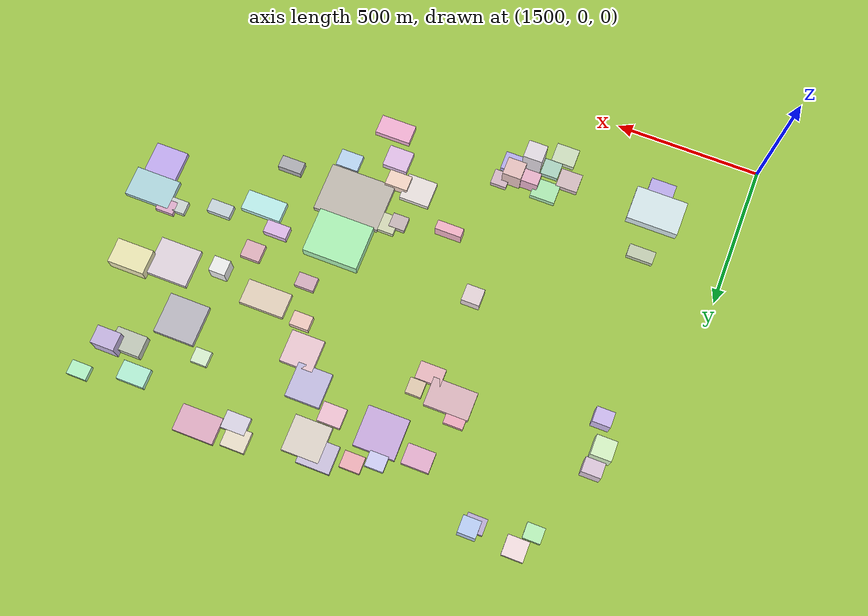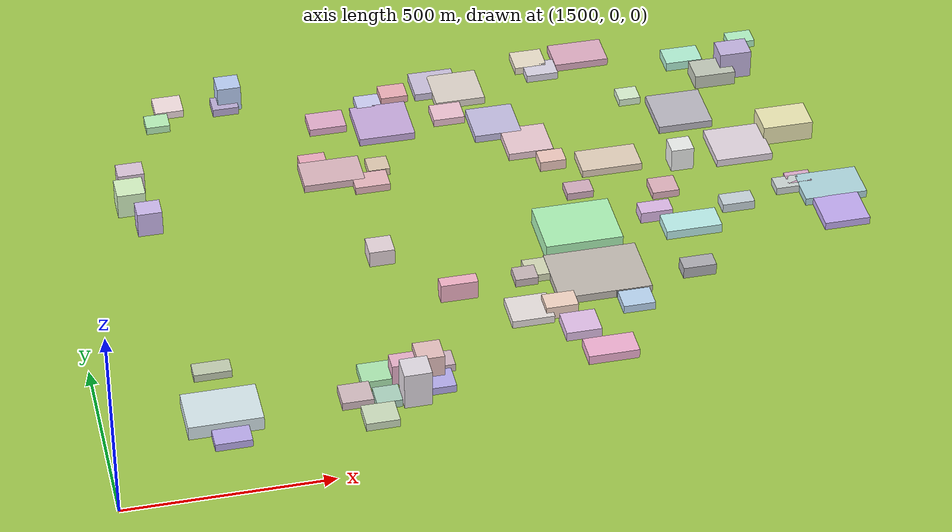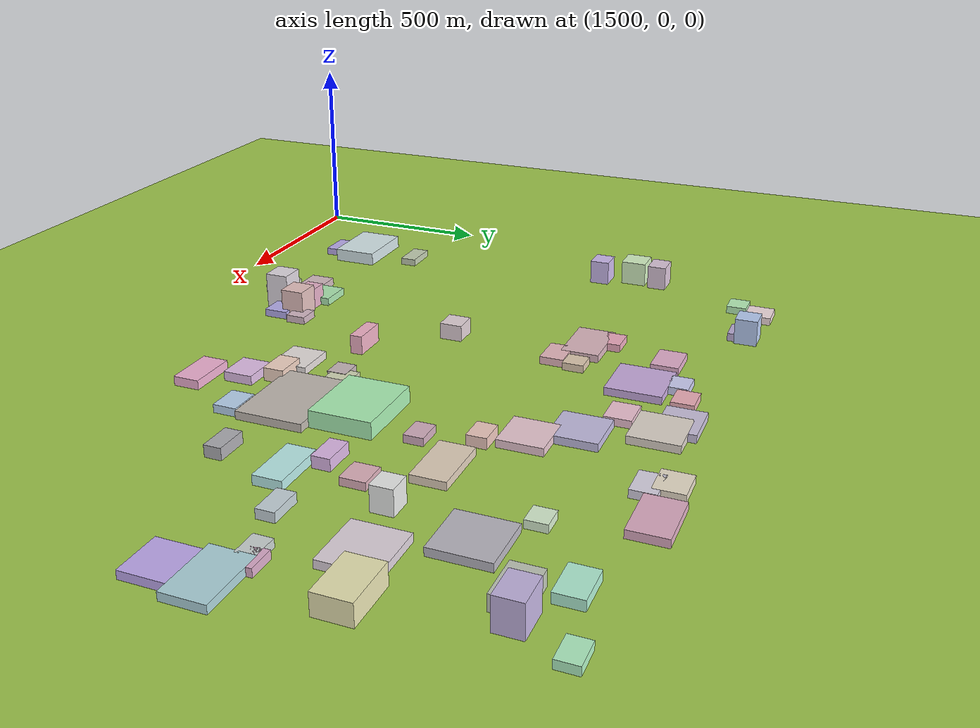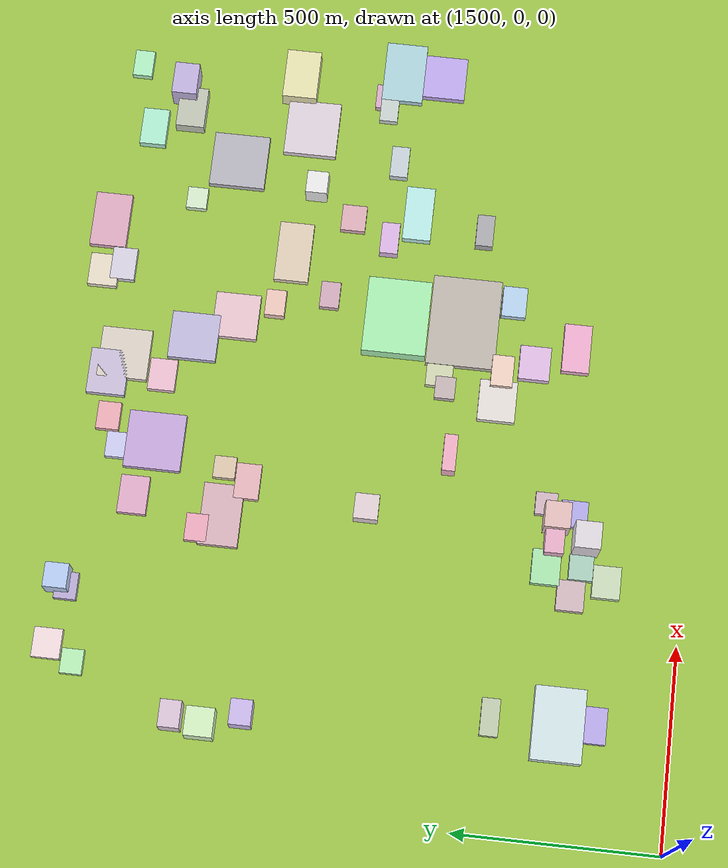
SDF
<sdf version="1.9">
 <world name="city_map">
  <model name="ground_plane">
   <static>1</static>
   <link name="link">
    <collision name="collision">
     <geometry><plane><normal>0 0 1</normal><size>11000 11000</size></plane></geometry>
    </collision>
    <visual name="visual">
     <geometry><plane><normal>0 0 1</normal><size>11000 11000</size></plane></geometry>
     <material>
      <ambient>0.551 0.712 0.210 1</ambient>
      <diffuse>0.651 0.812 0.310 1</diffuse>
      <specular>0.1 0.1 0.05 1</specular>
     </material>
    </visual>
   </link>
  </model>
  <model name="building_95256333">
   <static>1</static>
   <pose>2753.8077095743784 586.4312912188058 10.5 0 0 0</pose>
   <link name="link">
    <collision name="collision">
     <geometry><box><size>230.553463907557 171.98340000020096 21.0</size></box></geometry>
    </collision>
    <visual name="visual">
     <cast_shadows>false</cast_shadows>
     <geometry><box><size>230.553463907557 171.98340000020096 21.0</size></box></geometry>
     <material>
      <ambient>0.686 0.656 0.622 1</ambient>
      <diffuse>0.786 0.756 0.722 1</diffuse>
      <specular>0.236 0.227 0.217 1</specular>
      <emissive>0.01 0.01 0.01 1</emissive>
     </material>
    </visual>
   </link>
  </model>
  <model name="building_645757484">
   <static>1</static>
   <pose>2744.1018351129865 753.98529146079 21.665343699572546 0 0 0</pose>
   <link name="link">
    <collision name="collision">
     <geometry><box><size>193.3620000000147 158.25988112347488 43.33068739914509</size></box></geometry>
    </collision>
    <visual name="visual">
     <cast_shadows>false</cast_shadows>
     <geometry><box><size>193.3620000000147 158.25988112347488 43.33068739914509</size></box></geometry>
     <material>
      <ambient>0.600 0.883 0.637 1</ambient>
      <diffuse>0.700 0.983 0.737 1</diffuse>
      <specular>0.210 0.295 0.221 1</specular>
      <emissive>0.01 0.01 0.01 1</emissive>
     </material>
    </visual>
   </link>
  </model>
  <model name="building_177197993">
   <static>1</static>
   <pose>1779.1059165361296 267.86406099322573 18.0 0 0 0</pose>
   <link name="link">
    <collision name="collision">
     <geometry><box><size>177.7338826786568 122.35529999993844 36.0</size></box></geometry>
    </collision>
    <visual name="visual">
     <cast_shadows>false</cast_shadows>
     <geometry><box><size>177.7338826786568 122.35529999993844 36.0</size></box></geometry>
     <material>
      <ambient>0.772 0.841 0.857 1</ambient>
      <diffuse>0.872 0.941 0.957 1</diffuse>
      <specular>0.262 0.282 0.287 1</specular>
      <emissive>0.01 0.01 0.01 1</emissive>
     </material>
    </visual>
   </link>
  </model>
  <model name="building_663329203">
   <static>1</static>
   <pose>2367.1414692491867 1310.8313619500423 10.0 0 0 0</pose>
   <link name="link">
    <collision name="collision">
     <geometry><box><size>143.24482081875132 140.60370000024136 20</size></box></geometry>
    </collision>
    <visual name="visual">
     <cast_shadows>false</cast_shadows>
     <geometry><box><size>143.24482081875132 140.60370000024136 20</size></box></geometry>
     <material>
      <ambient>0.717 0.600 0.807 1</ambient>
      <diffuse>0.817 0.700 0.907 1</diffuse>
      <specular>0.245 0.210 0.272 1</specular>
      <emissive>0.01 0.01 0.01 1</emissive>
     </material>
    </visual>
   </link>
  </model>
  <model name="building_230204631">
   <static>1</static>
   <pose>3121.9798988473017 1195.359845361157 10.0 0 0 0</pose>
   <link name="link">
    <collision name="collision">
     <geometry><box><size>140.40389999948388 140.12168081745273 20</size></box></geometry>
    </collision>
    <visual name="visual">
     <cast_shadows>false</cast_shadows>
     <geometry><box><size>140.40389999948388 140.12168081745273 20</size></box></geometry>
     <material>
      <ambient>0.657 0.647 0.686 1</ambient>
      <diffuse>0.757 0.747 0.786 1</diffuse>
      <specular>0.227 0.224 0.236 1</specular>
      <emissive>0.01 0.01 0.01 1</emissive>
     </material>
    </visual>
   </link>
  </model>
  <model name="building_874791513">
   <static>1</static>
   <pose>3230.2686142714574 1021.5660588205621 10.0 0 0 0</pose>
   <link name="link">
    <collision name="collision">
     <geometry><box><size>145.04370000007327 132.77960865367987 20</size></box></geometry>
    </collision>
    <visual name="visual">
     <cast_shadows>false</cast_shadows>
     <geometry><box><size>145.04370000007327 132.77960865367987 20</size></box></geometry>
     <material>
      <ambient>0.814 0.767 0.806 1</ambient>
      <diffuse>0.914 0.867 0.906 1</diffuse>
      <specular>0.274 0.260 0.272 1</specular>
      <emissive>0.01 0.01 0.01 1</emissive>
     </material>
    </visual>
   </link>
  </model>
  <model name="building_483628706">
   <static>1</static>
   <pose>3409.0739560210736 803.3793015555366 10.0 0 0 0</pose>
   <link name="link">
    <collision name="collision">
     <geometry><box><size>157.8669227414518 103.84049999967715 20</size></box></geometry>
    </collision>
    <visual name="visual">
     <cast_shadows>false</cast_shadows>
     <geometry><box><size>157.8669227414518 103.84049999967715 20</size></box></geometry>
     <material>
      <ambient>0.616 0.774 0.804 1</ambient>
      <diffuse>0.716 0.874 0.904 1</diffuse>
      <specular>0.215 0.262 0.271 1</specular>
      <emissive>0.01 0.01 0.01 1</emissive>
     </material>
    </visual>
   </link>
  </model>
  <model name="building_94150322">
   <static>1</static>
   <pose>2582.0430458885517 1415.5044150231383 10.0 0 0 0</pose>
   <link name="link">
    <collision name="collision">
     <geometry><box><size>128.20425603814508 124.37549999988562 20</size></box></geometry>
    </collision>
    <visual name="visual">
     <cast_shadows>false</cast_shadows>
     <geometry><box><size>128.20425603814508 124.37549999988562 20</size></box></geometry>
     <material>
      <ambient>0.804 0.766 0.724 1</ambient>
      <diffuse>0.904 0.866 0.824 1</diffuse>
      <specular>0.271 0.260 0.247 1</specular>
      <emissive>0.01 0.01 0.01 1</emissive>
     </material>
    </visual>
   </link>
  </model>
  <model name="building_223767415">
   <static>1</static>
   <pose>2199.4583034955403 1126.7955682710437 10.0 0 0 0</pose>
   <link name="link">
    <collision name="collision">
     <geometry><box><size>153.7570892362903 98.19059999990287 20</size></box></geometry>
    </collision>
    <visual name="visual">
     <cast_shadows>false</cast_shadows>
     <geometry><box><size>153.7570892362903 98.19059999990287 20</size></box></geometry>
     <material>
      <ambient>0.793 0.642 0.678 1</ambient>
      <diffuse>0.893 0.742 0.778 1</diffuse>
      <specular>0.268 0.223 0.233 1</specular>
      <emissive>0.01 0.01 0.01 1</emissive>
     </material>
    </visual>
   </link>
  </model>
  <model name="building_312070599">
   <static>1</static>
   <pose>2644.98611607642 1250.060256290193 10.0 0 0 0</pose>
   <link name="link">
    <collision name="collision">
     <geometry><box><size>119.97093294125634 119.75790000034436 20</size></box></geometry>
    </collision>
    <visual name="visual">
     <cast_shadows>false</cast_shadows>
     <geometry><box><size>119.97093294125634 119.75790000034436 20</size></box></geometry>
     <material>
      <ambient>0.697 0.672 0.819 1</ambient>
      <diffuse>0.797 0.772 0.919 1</diffuse>
      <specular>0.239 0.232 0.276 1</specular>
      <emissive>0.01 0.01 0.01 1</emissive>
     </material>
    </visual>
   </link>
  </model>
  <model name="building_378848551">
   <static>1</static>
   <pose>2892.4897028180044 1028.8604716308953 10.0 0 0 0</pose>
   <link name="link">
    <collision name="collision">
     <geometry><box><size>154.1318800557488 85.86960000025101 20</size></box></geometry>
    </collision>
    <visual name="visual">
     <cast_shadows>false</cast_shadows>
     <geometry><box><size>154.1318800557488 85.86960000025101 20</size></box></geometry>
     <material>
      <ambient>0.824 0.751 0.667 1</ambient>
      <diffuse>0.924 0.851 0.767 1</diffuse>
      <specular>0.277 0.255 0.230 1</specular>
      <emissive>0.01 0.01 0.01 1</emissive>
     </material>
    </visual>
   </link>
  </model>
  <model name="building_741108798">
   <static>1</static>
   <pose>2709.4112736897787 1152.1538031455327 10.0 0 0 0</pose>
   <link name="link">
    <collision name="collision">
     <geometry><box><size>115.3512000001129 111.87009469455022 20</size></box></geometry>
    </collision>
    <visual name="visual">
     <cast_shadows>false</cast_shadows>
     <geometry><box><size>115.3512000001129 111.87009469455022 20</size></box></geometry>
     <material>
      <ambient>0.855 0.719 0.757 1</ambient>
      <diffuse>0.955 0.819 0.857 1</diffuse>
      <specular>0.287 0.246 0.257 1</specular>
      <emissive>0.01 0.01 0.01 1</emissive>
     </material>
    </visual>
   </link>
  </model>
  <model name="building_388039942">
   <static>1</static>
   <pose>2927.9816172997657 1497.7060518722924 10.0 0 0 0</pose>
   <link name="link">
    <collision name="collision">
     <geometry><box><size>140.35602338656403 91.61939999961533 20</size></box></geometry>
    </collision>
    <visual name="visual">
     <cast_shadows>false</cast_shadows>
     <geometry><box><size>140.35602338656403 91.61939999961533 20</size></box></geometry>
     <material>
      <ambient>0.808 0.607 0.695 1</ambient>
      <diffuse>0.908 0.707 0.795 1</diffuse>
      <specular>0.273 0.212 0.239 1</specular>
      <emissive>0.01 0.01 0.01 1</emissive>
     </material>
    </visual>
   </link>
  </model>
  <model name="building_83230302">
   <static>1</static>
   <pose>3406.1211339879187 698.8964376367471 10.0 0 0 0</pose>
   <link name="link">
    <collision name="collision">
     <geometry><box><size>114.48728035865634 107.93639999943139 20</size></box></geometry>
    </collision>
    <visual name="visual">
     <cast_shadows>false</cast_shadows>
     <geometry><box><size>114.48728035865634 107.93639999943139 20</size></box></geometry>
     <material>
      <ambient>0.691 0.601 0.881 1</ambient>
      <diffuse>0.791 0.701 0.981 1</diffuse>
      <specular>0.237 0.210 0.294 1</specular>
      <emissive>0.01 0.01 0.01 1</emissive>
     </material>
    </visual>
   </link>
  </model>
  <model name="building_726234550">
   <static>1</static>
   <pose>3362.216613622529 1063.2631855639902 25.74095827329397 0 0 0</pose>
   <link name="link">
    <collision name="collision">
     <geometry><box><size>128.2937999999305 86.86029503629436 51.48191654658794</size></box></geometry>
    </collision>
    <visual name="visual">
     <cast_shadows>false</cast_shadows>
     <geometry><box><size>128.2937999999305 86.86029503629436 51.48191654658794</size></box></geometry>
     <material>
      <ambient>0.857 0.837 0.634 1</ambient>
      <diffuse>0.957 0.937 0.734 1</diffuse>
      <specular>0.287 0.281 0.220 1</specular>
      <emissive>0.01 0.01 0.01 1</emissive>
     </material>
    </visual>
   </link>
  </model>
  <model name="building_703223975">
   <static>1</static>
   <pose>2530.165362268602 1450.0061210028964 10.0 0 0 0</pose>
   <link name="link">
    <collision name="collision">
     <geometry><box><size>115.16250000027384 95.82003589584069 20</size></box></geometry>
    </collision>
    <visual name="visual">
     <cast_shadows>false</cast_shadows>
     <geometry><box><size>115.16250000027384 95.82003589584069 20</size></box></geometry>
     <material>
      <ambient>0.730 0.691 0.804 1</ambient>
      <diffuse>0.830 0.791 0.904 1</diffuse>
      <specular>0.249 0.237 0.271 1</specular>
      <emissive>0.01 0.01 0.01 1</emissive>
     </material>
    </visual>
   </link>
  </model>
  <model name="building_562913991">
   <static>1</static>
   <pose>3027.089384989114 728.1002702895512 12.0 0 0 0</pose>
   <link name="link">
    <collision name="collision">
     <geometry><box><size>140.29053063265212 71.19539999991531 24.0</size></box></geometry>
    </collision>
    <visual name="visual">
     <cast_shadows>false</cast_shadows>
     <geometry><box><size>140.29053063265212 71.19539999991531 24.0</size></box></geometry>
     <material>
      <ambient>0.664 0.868 0.855 1</ambient>
      <diffuse>0.764 0.968 0.955 1</diffuse>
      <specular>0.229 0.290 0.286 1</specular>
      <emissive>0.01 0.01 0.01 1</emissive>
     </material>
    </visual>
   </link>
  </model>
  <model name="building_606217863">
   <static>1</static>
   <pose>2560.411301151715 485.2027689110193 10.0 0 0 0</pose>
   <link name="link">
    <collision name="collision">
     <geometry><box><size>103.94322247797035 92.58509999985876 20</size></box></geometry>
    </collision>
    <visual name="visual">
     <cast_shadows>false</cast_shadows>
     <geometry><box><size>103.94322247797035 92.58509999985876 20</size></box></geometry>
     <material>
      <ambient>0.845 0.815 0.805 1</ambient>
      <diffuse>0.945 0.915 0.905 1</diffuse>
      <specular>0.284 0.274 0.272 1</specular>
      <emissive>0.01 0.01 0.01 1</emissive>
     </material>
    </visual>
   </link>
  </model>
  <model name="building_942181483">
   <static>1</static>
   <pose>2715.4078624896547 301.5096646844577 12.0 0 0 0</pose>
   <link name="link">
    <collision name="collision">
     <geometry><box><size>123.39869999951247 68.07119622437642 24.0</size></box></geometry>
    </collision>
    <visual name="visual">
     <cast_shadows>false</cast_shadows>
     <geometry><box><size>123.39869999951247 68.07119622437642 24.0</size></box></geometry>
     <material>
      <ambient>0.883 0.624 0.762 1</ambient>
      <diffuse>0.983 0.724 0.862 1</diffuse>
      <specular>0.295 0.217 0.259 1</specular>
      <emissive>0.01 0.01 0.01 1</emissive>
     </material>
    </visual>
   </link>
  </model>
  <model name="building_519996404">
   <static>1</static>
   <pose>3247.277413805824 1332.1411666838185 18.822726591854703 0 0 0</pose>
   <link name="link">
    <collision name="collision">
     <geometry><box><size>106.21589999983172 72.09484841737927 37.64545318370941</size></box></geometry>
    </collision>
    <visual name="visual">
     <cast_shadows>false</cast_shadows>
     <geometry><box><size>106.21589999983172 72.09484841737927 37.64545318370941</size></box></geometry>
     <material>
      <ambient>0.688 0.715 0.652 1</ambient>
      <diffuse>0.788 0.815 0.752 1</diffuse>
      <specular>0.237 0.245 0.226 1</specular>
      <emissive>0.01 0.01 0.01 1</emissive>
     </material>
    </visual>
   </link>
  </model>
  <model name="building_382789279">
   <static>1</static>
   <pose>2226.5956652653813 1344.795890636461 10.0 0 0 0</pose>
   <link name="link">
    <collision name="collision">
     <geometry><box><size>94.73849999978512 70.52132684136338 20</size></box></geometry>
    </collision>
    <visual name="visual">
     <cast_shadows>false</cast_shadows>
     <geometry><box><size>94.73849999978512 70.52132684136338 20</size></box></geometry>
     <material>
      <ambient>0.829 0.613 0.737 1</ambient>
      <diffuse>0.929 0.713 0.837 1</diffuse>
      <specular>0.279 0.214 0.251 1</specular>
      <emissive>0.01 0.01 0.01 1</emissive>
     </material>
    </visual>
   </link>
  </model>
  <model name="building_283791389">
   <static>1</static>
   <pose>2666.2458306516405 401.9636166167788 12.0 0 0 0</pose>
   <link name="link">
    <collision name="collision">
     <geometry><box><size>86.48015280126909 76.46790000001147 24.0</size></box></geometry>
    </collision>
    <visual name="visual">
     <cast_shadows>false</cast_shadows>
     <geometry><box><size>86.48015280126909 76.46790000001147 24.0</size></box></geometry>
     <material>
      <ambient>0.820 0.681 0.848 1</ambient>
      <diffuse>0.920 0.781 0.948 1</diffuse>
      <specular>0.276 0.234 0.284 1</specular>
      <emissive>0.01 0.01 0.01 1</emissive>
     </material>
    </visual>
   </link>
  </model>
  <model name="building_855443043">
   <static>1</static>
   <pose>3189.5243543197266 1422.2603922578833 12.0 0 0 0</pose>
   <link name="link">
    <collision name="collision">
     <geometry><box><size>96.38130000005418 65.26678224518271 24.0</size></box></geometry>
    </collision>
    <visual name="visual">
     <cast_shadows>false</cast_shadows>
     <geometry><box><size>96.38130000005418 65.26678224518271 24.0</size></box></geometry>
     <material>
      <ambient>0.628 0.878 0.767 1</ambient>
      <diffuse>0.728 0.978 0.867 1</diffuse>
      <specular>0.218 0.293 0.260 1</specular>
      <emissive>0.01 0.01 0.01 1</emissive>
     </material>
    </visual>
   </link>
  </model>
  <model name="building_814755737">
   <static>1</static>
   <pose>2793.837646597317 1497.4898758544941 10.0 0 0 0</pose>
   <link name="link">
    <collision name="collision">
     <geometry><box><size>82.72698599618816 73.24889999946294 20</size></box></geometry>
    </collision>
    <visual name="visual">
     <cast_shadows>false</cast_shadows>
     <geometry><box><size>82.72698599618816 73.24889999946294 20</size></box></geometry>
     <material>
      <ambient>0.854 0.809 0.725 1</ambient>
      <diffuse>0.954 0.909 0.825 1</diffuse>
      <specular>0.286 0.273 0.248 1</specular>
      <emissive>0.01 0.01 0.01 1</emissive>
     </material>
    </visual>
   </link>
  </model>
  <model name="building_7835866">
   <static>1</static>
   <pose>2157.334719397973 329.64338309553955 10.5 0 0 0</pose>
   <link name="link">
    <collision name="collision">
     <geometry><box><size>86.5911000000068 69.67818429980898 21.0</size></box></geometry>
    </collision>
    <visual name="visual">
     <cast_shadows>false</cast_shadows>
     <geometry><box><size>86.5911000000068 69.67818429980898 21.0</size></box></geometry>
     <material>
      <ambient>0.610 0.851 0.629 1</ambient>
      <diffuse>0.710 0.951 0.729 1</diffuse>
      <specular>0.213 0.285 0.219 1</specular>
      <emissive>0.01 0.01 0.01 1</emissive>
     </material>
    </visual>
   </link>
  </model>
  <model name="building_592050567">
   <static>1</static>
   <pose>2135.170023619476 181.21437195210166 10.5 0 0 0</pose>
   <link name="link">
    <collision name="collision">
     <geometry><box><size>80.31960000006677 68.11334257466412 21.0</size></box></geometry>
    </collision>
    <visual name="visual">
     <cast_shadows>false</cast_shadows>
     <geometry><box><size>80.31960000006677 68.11334257466412 21.0</size></box></geometry>
     <material>
      <ambient>0.737 0.806 0.677 1</ambient>
      <diffuse>0.837 0.906 0.777 1</diffuse>
      <specular>0.251 0.272 0.233 1</specular>
      <emissive>0.01 0.01 0.01 1</emissive>
     </material>
    </visual>
   </link>
  </model>
  <model name="building_807607108">
   <static>1</static>
   <pose>2289.9447286759623 1072.118131772621 10.0 0 0 0</pose>
   <link name="link">
    <collision name="collision">
     <geometry><box><size>88.31160000039517 61.15236450159986 20</size></box></geometry>
    </collision>
    <visual name="visual">
     <cast_shadows>false</cast_shadows>
     <geometry><box><size>88.31160000039517 61.15236450159986 20</size></box></geometry>
     <material>
      <ambient>0.847 0.651 0.680 1</ambient>
      <diffuse>0.947 0.751 0.780 1</diffuse>
      <specular>0.284 0.225 0.234 1</specular>
      <emissive>0.01 0.01 0.01 1</emissive>
     </material>
    </visual>
   </link>
  </model>
  <model name="building_995497698">
   <static>1</static>
   <pose>2537.240574151237 1314.600569886296 10.0 0 0 0</pose>
   <link name="link">
    <collision name="collision">
     <geometry><box><size>80.35289999966722 67.17239883022515 20</size></box></geometry>
    </collision>
    <visual name="visual">
     <cast_shadows>false</cast_shadows>
     <geometry><box><size>80.35289999966722 67.17239883022515 20</size></box></geometry>
     <material>
      <ambient>0.875 0.695 0.763 1</ambient>
      <diffuse>0.975 0.795 0.863 1</diffuse>
      <specular>0.293 0.238 0.259 1</specular>
      <emissive>0.01 0.01 0.01 1</emissive>
     </material>
    </visual>
   </link>
  </model>
  <model name="building_944666044">
   <static>1</static>
   <pose>3308.3085810462876 1353.8059300080483 37.80803912492419 0 0 0</pose>
   <link name="link">
    <collision name="collision">
     <geometry><box><size>82.57290000037187 62.66816197888174 75.61607824984839</size></box></geometry>
    </collision>
    <visual name="visual">
     <cast_shadows>false</cast_shadows>
     <geometry><box><size>82.57290000037187 62.66816197888174 75.61607824984839</size></box></geometry>
     <material>
      <ambient>0.698 0.635 0.816 1</ambient>
      <diffuse>0.798 0.735 0.916 1</diffuse>
      <specular>0.239 0.220 0.275 1</specular>
      <emissive>0.01 0.01 0.01 1</emissive>
     </material>
    </visual>
   </link>
  </model>
  <model name="building_721736433">
   <static>1</static>
   <pose>2092.8803106668242 265.15032564097663 10.5 0 0 0</pose>
   <link name="link">
    <collision name="collision">
     <geometry><box><size>74.91336330712682 67.42139999997931 21.0</size></box></geometry>
    </collision>
    <visual name="visual">
     <cast_shadows>false</cast_shadows>
     <geometry><box><size>74.91336330712682 67.42139999997931 21.0</size></box></geometry>
     <material>
      <ambient>0.763 0.666 0.687 1</ambient>
      <diffuse>0.863 0.766 0.787 1</diffuse>
      <specular>0.259 0.230 0.236 1</specular>
      <emissive>0.01 0.01 0.01 1</emissive>
     </material>
    </visual>
   </link>
  </model>
  <model name="building_150732600">
   <static>1</static>
   <pose>2815.2416701526854 1450.0441126040016 10.0 0 0 0</pose>
   <link name="link">
    <collision name="collision">
     <geometry><box><size>82.72766214219217 60.97230000032994 20</size></box></geometry>
    </collision>
    <visual name="visual">
     <cast_shadows>false</cast_shadows>
     <geometry><box><size>82.72766214219217 60.97230000032994 20</size></box></geometry>
     <material>
      <ambient>0.787 0.766 0.834 1</ambient>
      <diffuse>0.887 0.866 0.934 1</diffuse>
      <specular>0.266 0.260 0.280 1</specular>
      <emissive>0.01 0.01 0.01 1</emissive>
     </material>
    </visual>
   </link>
  </model>
  <model name="building_986964740">
   <static>1</static>
   <pose>1841.6689783317042 1500.7462192801056 10.0 0 0 0</pose>
   <link name="link">
    <collision name="collision">
     <geometry><box><size>73.02689999923473 68.93880992063072 20</size></box></geometry>
    </collision>
    <visual name="visual">
     <cast_shadows>false</cast_shadows>
     <geometry><box><size>73.02689999923473 68.93880992063072 20</size></box></geometry>
     <material>
      <ambient>0.895 0.808 0.817 1</ambient>
      <diffuse>0.995 0.908 0.917 1</diffuse>
      <specular>0.299 0.273 0.275 1</specular>
      <emissive>0.01 0.01 0.01 1</emissive>
     </material>
    </visual>
   </link>
  </model>
  <model name="building_122708564">
   <static>1</static>
   <pose>1688.4871261419732 1110.8674986583324 33.0 0 0 0</pose>
   <link name="link">
    <collision name="collision">
     <geometry><box><size>70.64040000052785 68.87020226618395 66.0</size></box></geometry>
    </collision>
    <visual name="visual">
     <cast_shadows>false</cast_shadows>
     <geometry><box><size>70.64040000052785 68.87020226618395 66.0</size></box></geometry>
     <material>
      <ambient>0.769 0.889 0.699 1</ambient>
      <diffuse>0.869 0.989 0.799 1</diffuse>
      <specular>0.261 0.297 0.240 1</specular>
      <emissive>0.01 0.01 0.01 1</emissive>
     </material>
    </visual>
   </link>
  </model>
  <model name="building_316686616">
   <static>1</static>
   <pose>1787.792420079968 180.35731567087518 10.0 0 0 0</pose>
   <link name="link">
    <collision name="collision">
     <geometry><box><size>88.01190000004766 55.01073655881072 20</size></box></geometry>
    </collision>
    <visual name="visual">
     <cast_shadows>false</cast_shadows>
     <geometry><box><size>88.01190000004766 55.01073655881072 20</size></box></geometry>
     <material>
      <ambient>0.667 0.605 0.863 1</ambient>
      <diffuse>0.767 0.705 0.963 1</diffuse>
      <specular>0.230 0.212 0.289 1</specular>
      <emissive>0.01 0.01 0.01 1</emissive>
     </material>
    </visual>
   </link>
  </model>
  <model name="building_972206449">
   <static>1</static>
   <pose>2820.757779453467 466.07988902525227 10.5 0 0 0</pose>
   <link name="link">
    <collision name="collision">
     <geometry><box><size>78.55469999994824 60.35634833356912 21.0</size></box></geometry>
    </collision>
    <visual name="visual">
     <cast_shadows>false</cast_shadows>
     <geometry><box><size>78.55469999994824 60.35634833356912 21.0</size></box></geometry>
     <material>
      <ambient>0.658 0.769 0.884 1</ambient>
      <diffuse>0.758 0.869 0.984 1</diffuse>
      <specular>0.228 0.261 0.295 1</specular>
      <emissive>0.01 0.01 0.01 1</emissive>
     </material>
    </visual>
   </link>
  </model>
  <model name="building_414241867">
   <static>1</static>
   <pose>2616.2969915725375 634.1564038960123 10.0 0 0 0</pose>
   <link name="link">
    <collision name="collision">
     <geometry><box><size>66.95520000005217 65.85148288816615 20</size></box></geometry>
    </collision>
    <visual name="visual">
     <cast_shadows>false</cast_shadows>
     <geometry><box><size>66.95520000005217 65.85148288816615 20</size></box></geometry>
     <material>
      <ambient>0.767 0.785 0.647 1</ambient>
      <diffuse>0.867 0.885 0.747 1</diffuse>
      <specular>0.260 0.266 0.224 1</specular>
      <emissive>0.01 0.01 0.01 1</emissive>
     </material>
    </visual>
   </link>
  </model>
  <model name="building_886941286">
   <static>1</static>
   <pose>2295.3978655696515 272.18929543607186 10.0 0 0 0</pose>
   <link name="link">
    <collision name="collision">
     <geometry><box><size>66.23465081757799 65.31240000057181 20</size></box></geometry>
    </collision>
    <visual name="visual">
     <cast_shadows>false</cast_shadows>
     <geometry><box><size>66.23465081757799 65.31240000057181 20</size></box></geometry>
     <material>
      <ambient>0.643 0.608 0.867 1</ambient>
      <diffuse>0.743 0.708 0.967 1</diffuse>
      <specular>0.223 0.212 0.290 1</specular>
      <emissive>0.01 0.01 0.01 1</emissive>
     </material>
    </visual>
   </link>
  </model>
  <model name="building_694267908">
   <static>1</static>
   <pose>2634.500368186087 480.1730517293458 17.379988623194183 0 0 0</pose>
   <link name="link">
    <collision name="collision">
     <geometry><box><size>79.02090000066408 54.11585838110704 34.75997724638837</size></box></geometry>
    </collision>
    <visual name="visual">
     <cast_shadows>false</cast_shadows>
     <geometry><box><size>79.02090000066408 54.11585838110704 34.75997724638837</size></box></geometry>
     <material>
      <ambient>0.894 0.770 0.704 1</ambient>
      <diffuse>0.994 0.870 0.804 1</diffuse>
      <specular>0.298 0.261 0.241 1</specular>
      <emissive>0.01 0.01 0.01 1</emissive>
     </material>
    </visual>
   </link>
  </model>
  <model name="building_906098397">
   <static>1</static>
   <pose>2230.844060718014 239.58694294371514 47.84825663915421 0 0 0</pose>
   <link name="link">
    <collision name="collision">
     <geometry><box><size>66.63348576935748 63.71400000003291 95.69651327830842</size></box></geometry>
    </collision>
    <visual name="visual">
     <cast_shadows>false</cast_shadows>
     <geometry><box><size>66.63348576935748 63.71400000003291 95.69651327830842</size></box></geometry>
     <material>
      <ambient>0.817 0.788 0.822 1</ambient>
      <diffuse>0.917 0.888 0.922 1</diffuse>
      <specular>0.275 0.266 0.277 1</specular>
      <emissive>0.01 0.01 0.01 1</emissive>
     </material>
    </visual>
   </link>
  </model>
  <model name="building_207457833">
   <static>1</static>
   <pose>2998.8984882952764 889.5992092347032 10.0 0 0 0</pose>
   <link name="link">
    <collision name="collision">
     <geometry><box><size>67.77257548042343 61.69380000008573 20</size></box></geometry>
    </collision>
    <visual name="visual">
     <cast_shadows>false</cast_shadows>
     <geometry><box><size>67.77257548042343 61.69380000008573 20</size></box></geometry>
     <material>
      <ambient>0.811 0.626 0.671 1</ambient>
      <diffuse>0.911 0.726 0.771 1</diffuse>
      <specular>0.273 0.218 0.231 1</specular>
      <emissive>0.01 0.01 0.01 1</emissive>
     </material>
    </visual>
   </link>
  </model>
  <model name="building_966209330">
   <static>1</static>
   <pose>2277.3443355542604 314.71351828288294 37.92185336575407 0 0 0</pose>
   <link name="link">
    <collision name="collision">
     <geometry><box><size>65.04599999982474 63.60671517705294 75.84370673150814</size></box></geometry>
    </collision>
    <visual name="visual">
     <cast_shadows>false</cast_shadows>
     <geometry><box><size>65.04599999982474 63.60671517705294 75.84370673150814</size></box></geometry>
     <material>
      <ambient>0.837 0.689 0.681 1</ambient>
      <diffuse>0.937 0.789 0.781 1</diffuse>
      <specular>0.281 0.237 0.234 1</specular>
      <emissive>0.01 0.01 0.01 1</emissive>
     </material>
    </visual>
   </link>
  </model>
  <model name="building_633259308">
   <static>1</static>
   <pose>3265.333244302629 1337.9209863087829 16.070671320371424 0 0 0</pose>
   <link name="link">
    <collision name="collision">
     <geometry><box><size>76.46790000001147 53.37715639600993 32.14134264074285</size></box></geometry>
    </collision>
    <visual name="visual">
     <cast_shadows>false</cast_shadows>
     <geometry><box><size>76.46790000001147 53.37715639600993 32.14134264074285</size></box></geometry>
     <material>
      <ambient>0.817 0.628 0.795 1</ambient>
      <diffuse>0.917 0.728 0.895 1</diffuse>
      <specular>0.275 0.218 0.268 1</specular>
      <emissive>0.01 0.01 0.01 1</emissive>
     </material>
    </visual>
   </link>
  </model>
  <model name="building_445180598">
   <static>1</static>
   <pose>1780.7013020685324 429.84622793208973 10.0 0 0 0</pose>
   <link name="link">
    <collision name="collision">
     <geometry><box><size>90.99780000023827 44.364294345731444 20</size></box></geometry>
    </collision>
    <visual name="visual">
     <cast_shadows>false</cast_shadows>
     <geometry><box><size>90.99780000023827 44.364294345731444 20</size></box></geometry>
     <material>
      <ambient>0.695 0.739 0.629 1</ambient>
      <diffuse>0.795 0.839 0.729 1</diffuse>
      <specular>0.239 0.252 0.219 1</specular>
      <emissive>0.01 0.01 0.01 1</emissive>
     </material>
    </visual>
   </link>
  </model>
  <model name="building_653852573">
   <static>1</static>
   <pose>2418.4099188682303 1432.8003740298636 10.0 0 0 0</pose>
   <link name="link">
    <collision name="collision">
     <geometry><box><size>69.70287753285679 56.75429999993753 20</size></box></geometry>
    </collision>
    <visual name="visual">
     <cast_shadows>false</cast_shadows>
     <geometry><box><size>69.70287753285679 56.75429999993753 20</size></box></geometry>
     <material>
      <ambient>0.869 0.618 0.654 1</ambient>
      <diffuse>0.969 0.718 0.754 1</diffuse>
      <specular>0.291 0.216 0.226 1</specular>
      <emissive>0.01 0.01 0.01 1</emissive>
     </material>
    </visual>
   </link>
  </model>
  <model name="building_151677570">
   <static>1</static>
   <pose>2253.9099803726403 776.4324068584286 21.39303431853549 0 0 0</pose>
   <link name="link">
    <collision name="collision">
     <geometry><box><size>63.242716573052405 59.606999999360255 42.78606863707098</size></box></geometry>
    </collision>
    <visual name="visual">
     <cast_shadows>false</cast_shadows>
     <geometry><box><size>63.242716573052405 59.606999999360255 42.78606863707098</size></box></geometry>
     <material>
      <ambient>0.829 0.761 0.783 1</ambient>
      <diffuse>0.929 0.861 0.883 1</diffuse>
      <specular>0.279 0.258 0.265 1</specular>
      <emissive>0.01 0.01 0.01 1</emissive>
     </material>
    </visual>
   </link>
  </model>
  <model name="building_342763614">
   <static>1</static>
   <pose>2951.9234077780507 793.56289915943 15.0 0 0 0</pose>
   <link name="link">
    <collision name="collision">
     <geometry><box><size>81.3477148203497 45.44340000025926 30.0</size></box></geometry>
    </collision>
    <visual name="visual">
     <cast_shadows>false</cast_shadows>
     <geometry><box><size>81.3477148203497 45.44340000025926 30.0</size></box></geometry>
     <material>
      <ambient>0.806 0.656 0.846 1</ambient>
      <diffuse>0.906 0.756 0.946 1</diffuse>
      <specular>0.272 0.227 0.284 1</specular>
      <emissive>0.01 0.01 0.01 1</emissive>
     </material>
    </visual>
   </link>
  </model>
  <model name="building_48603181">
   <static>1</static>
   <pose>3161.4368385535267 790.1293545288399 12.0 0 0 0</pose>
   <link name="link">
    <collision name="collision">
     <geometry><box><size>81.56386855620252 45.16590000017118 24.0</size></box></geometry>
    </collision>
    <visual name="visual">
     <cast_shadows>false</cast_shadows>
     <geometry><box><size>81.56386855620252 45.16590000017118 24.0</size></box></geometry>
     <material>
      <ambient>0.716 0.767 0.793 1</ambient>
      <diffuse>0.816 0.867 0.893 1</diffuse>
      <specular>0.245 0.260 0.268 1</specular>
      <emissive>0.01 0.01 0.01 1</emissive>
     </material>
    </visual>
   </link>
  </model>
  <model name="building_836785211">
   <static>1</static>
   <pose>1985.2458909154382 1475.3111211099576 10.5 0 0 0</pose>
   <link name="link">
    <collision name="collision">
     <geometry><box><size>66.61657428588614 54.767400000379496 21.0</size></box></geometry>
    </collision>
    <visual name="visual">
     <cast_shadows>false</cast_shadows>
     <geometry><box><size>66.61657428588614 54.767400000379496 21.0</size></box></geometry>
     <material>
      <ambient>0.666 0.607 0.773 1</ambient>
      <diffuse>0.766 0.707 0.873 1</diffuse>
      <specular>0.230 0.212 0.262 1</specular>
      <emissive>0.01 0.01 0.01 1</emissive>
     </material>
    </visual>
   </link>
  </model>
  <model name="building_769978055">
   <static>1</static>
   <pose>2162.0185658069167 1182.0220853184233 10.0 0 0 0</pose>
   <link name="link">
    <collision name="collision">
     <geometry><box><size>67.75509269491965 53.72400000001676 20</size></box></geometry>
    </collision>
    <visual name="visual">
     <cast_shadows>false</cast_shadows>
     <geometry><box><size>67.75509269491965 53.72400000001676 20</size></box></geometry>
     <material>
      <ambient>0.869 0.602 0.680 1</ambient>
      <diffuse>0.969 0.702 0.780 1</diffuse>
      <specular>0.291 0.211 0.234 1</specular>
      <emissive>0.01 0.01 0.01 1</emissive>
     </material>
    </visual>
   </link>
  </model>
  <model name="building_372932651">
   <static>1</static>
   <pose>2164.2435576071125 244.96700201192772 10.0 0 0 0</pose>
   <link name="link">
    <collision name="collision">
     <geometry><box><size>61.51396455964642 58.785600000014426 20</size></box></geometry>
    </collision>
    <visual name="visual">
     <cast_shadows>false</cast_shadows>
     <geometry><box><size>61.51396455964642 58.785600000014426 20</size></box></geometry>
     <material>
      <ambient>0.603 0.761 0.684 1</ambient>
      <diffuse>0.703 0.861 0.784 1</diffuse>
      <specular>0.211 0.258 0.235 1</specular>
      <emissive>0.01 0.01 0.01 1</emissive>
     </material>
    </visual>
   </link>
  </model>
  <model name="building_353753097">
   <static>1</static>
   <pose>2997.8267288574157 557.0959228621174 15.0 0 0 0</pose>
   <link name="link">
    <collision name="collision">
     <geometry><box><size>82.2287999995055 43.60002961340359 30.0</size></box></geometry>
    </collision>
    <visual name="visual">
     <cast_shadows>false</cast_shadows>
     <geometry><box><size>82.2287999995055 43.60002961340359 30.0</size></box></geometry>
     <material>
      <ambient>0.612 0.609 0.632 1</ambient>
      <diffuse>0.712 0.709 0.732 1</diffuse>
      <specular>0.214 0.213 0.220 1</specular>
      <emissive>0.01 0.01 0.01 1</emissive>
     </material>
    </visual>
   </link>
  </model>
  <model name="building_46865685">
   <static>1</static>
   <pose>1998.4979485732886 1496.3074055943985 34.20427639812146 0 0 0</pose>
   <link name="link">
    <collision name="collision">
     <geometry><box><size>60.86129999982148 58.054653776622274 68.40855279624292</size></box></geometry>
    </collision>
    <visual name="visual">
     <cast_shadows>false</cast_shadows>
     <geometry><box><size>60.86129999982148 58.054653776622274 68.40855279624292</size></box></geometry>
     <material>
      <ambient>0.656 0.741 0.898 1</ambient>
      <diffuse>0.756 0.841 0.998 1</diffuse>
      <specular>0.227 0.252 0.299 1</specular>
      <emissive>0.01 0.01 0.01 1</emissive>
     </material>
    </visual>
   </link>
  </model>
  <model name="building_78535745">
   <static>1</static>
   <pose>3362.0241574283846 1473.447679464553 10.0 0 0 0</pose>
   <link name="link">
    <collision name="collision">
     <geometry><box><size>69.2229464882062 49.29510000031456 20</size></box></geometry>
    </collision>
    <visual name="visual">
     <cast_shadows>false</cast_shadows>
     <geometry><box><size>69.2229464882062 49.29510000031456 20</size></box></geometry>
     <material>
      <ambient>0.628 0.888 0.703 1</ambient>
      <diffuse>0.728 0.988 0.803 1</diffuse>
      <specular>0.218 0.296 0.241 1</specular>
      <emissive>0.01 0.01 0.01 1</emissive>
     </material>
    </visual>
   </link>
  </model>
  <model name="building_441969295">
   <static>1</static>
   <pose>1699.7736514223955 1182.1933255061929 33.0 0 0 0</pose>
   <link name="link">
    <collision name="collision">
     <geometry><box><size>66.1344746784143 51.41519999985178 66.0</size></box></geometry>
    </collision>
    <visual name="visual">
     <cast_shadows>false</cast_shadows>
     <geometry><box><size>66.1344746784143 51.41519999985178 66.0</size></box></geometry>
     <material>
      <ambient>0.796 0.708 0.789 1</ambient>
      <diffuse>0.896 0.808 0.889 1</diffuse>
      <specular>0.269 0.242 0.267 1</specular>
      <emissive>0.01 0.01 0.01 1</emissive>
     </material>
    </visual>
   </link>
  </model>
  <model name="building_312439340">
   <static>1</static>
   <pose>2347.0643005395905 1402.754887101342 10.0 0 0 0</pose>
   <link name="link">
    <collision name="collision">
     <geometry><box><size>63.63312277409517 53.36880000059807 20</size></box></geometry>
    </collision>
    <visual name="visual">
     <cast_shadows>false</cast_shadows>
     <geometry><box><size>63.63312277409517 53.36880000059807 20</size></box></geometry>
     <material>
      <ambient>0.741 0.745 0.896 1</ambient>
      <diffuse>0.841 0.845 0.996 1</diffuse>
      <specular>0.252 0.253 0.299 1</specular>
      <emissive>0.01 0.01 0.01 1</emissive>
     </material>
    </visual>
   </link>
  </model>
  <model name="building_828191682">
   <static>1</static>
   <pose>2751.4403825420472 1058.816160684048 13.841502350994514 0 0 0</pose>
   <link name="link">
    <collision name="collision">
     <geometry><box><size>66.64439999957494 49.693213935050686 27.683004701989027</size></box></geometry>
    </collision>
    <visual name="visual">
     <cast_shadows>false</cast_shadows>
     <geometry><box><size>66.64439999957494 49.693213935050686 27.683004701989027</size></box></geometry>
     <material>
      <ambient>0.877 0.722 0.683 1</ambient>
      <diffuse>0.977 0.822 0.783 1</diffuse>
      <specular>0.293 0.247 0.235 1</specular>
      <emissive>0.01 0.01 0.01 1</emissive>
     </material>
    </visual>
   </link>
  </model>
  <model name="building_382308287">
   <static>1</static>
   <pose>1721.3868762335392 1016.4020320168928 33.0 0 0 0</pose>
   <link name="link">
    <collision name="collision">
     <geometry><box><size>62.026799999244986 52.88759779034957 66.0</size></box></geometry>
    </collision>
    <visual name="visual">
     <cast_shadows>false</cast_shadows>
     <geometry><box><size>62.026799999244986 52.88759779034957 66.0</size></box></geometry>
     <material>
      <ambient>0.734 0.659 0.870 1</ambient>
      <diffuse>0.834 0.759 0.970 1</diffuse>
      <specular>0.250 0.228 0.291 1</specular>
      <emissive>0.01 0.01 0.01 1</emissive>
     </material>
    </visual>
   </link>
  </model>
  <model name="building_712979887">
   <static>1</static>
   <pose>2789.5912326903804 926.2346769615069 10.0 0 0 0</pose>
   <link name="link">
    <collision name="collision">
     <geometry><box><size>67.54349999982878 48.50611066732081 20</size></box></geometry>
    </collision>
    <visual name="visual">
     <cast_shadows>false</cast_shadows>
     <geometry><box><size>67.54349999982878 48.50611066732081 20</size></box></geometry>
     <material>
      <ambient>0.765 0.614 0.680 1</ambient>
      <diffuse>0.865 0.714 0.780 1</diffuse>
      <specular>0.259 0.214 0.234 1</specular>
      <emissive>0.01 0.01 0.01 1</emissive>
     </material>
    </visual>
   </link>
  </model>
  <model name="building_922636777">
   <static>1</static>
   <pose>1803.911654822959 1435.2384070355213 10.0 0 0 0</pose>
   <link name="link">
    <collision name="collision">
     <geometry><box><size>60.378117288804106 53.19119999931132 20</size></box></geometry>
    </collision>
    <visual name="visual">
     <cast_shadows>false</cast_shadows>
     <geometry><box><size>60.378117288804106 53.19119999931132 20</size></box></geometry>
     <material>
      <ambient>0.655 0.884 0.657 1</ambient>
      <diffuse>0.755 0.984 0.757 1</diffuse>
      <specular>0.227 0.295 0.227 1</specular>
      <emissive>0.01 0.01 0.01 1</emissive>
     </material>
    </visual>
   </link>
  </model>
  <model name="building_224574474">
   <static>1</static>
   <pose>3069.21258124271 990.1426373021822 31.142768463078543 0 0 0</pose>
   <link name="link">
    <collision name="collision">
     <geometry><box><size>57.48000277662643 53.946000000244965 62.285536926157086</size></box></geometry>
    </collision>
    <visual name="visual">
     <cast_shadows>false</cast_shadows>
     <geometry><box><size>57.48000277662643 53.946000000244965 62.285536926157086</size></box></geometry>
     <material>
      <ambient>0.861 0.867 0.861 1</ambient>
      <diffuse>0.961 0.967 0.961 1</diffuse>
      <specular>0.288 0.290 0.288 1</specular>
      <emissive>0.01 0.01 0.01 1</emissive>
     </material>
    </visual>
   </link>
  </model>
  <model name="building_38216186">
   <static>1</static>
   <pose>2408.750271556553 588.6184984875331 24.80852906581656 0 0 0</pose>
   <link name="link">
    <collision name="collision">
     <geometry><box><size>92.21880000031035 32.60525850278592 49.61705813163312</size></box></geometry>
    </collision>
    <visual name="visual">
     <cast_shadows>false</cast_shadows>
     <geometry><box><size>92.21880000031035 32.60525850278592 49.61705813163312</size></box></geometry>
     <material>
      <ambient>0.887 0.629 0.712 1</ambient>
      <diffuse>0.987 0.729 0.812 1</diffuse>
      <specular>0.296 0.219 0.244 1</specular>
      <emissive>0.01 0.01 0.01 1</emissive>
     </material>
    </visual>
   </link>
  </model>
  <model name="building_696235521">
   <static>1</static>
   <pose>2314.2518008496454 342.07091509988476 10.0 0 0 0</pose>
   <link name="link">
    <collision name="collision">
     <geometry><box><size>55.67757966935168 53.74620000027619 20</size></box></geometry>
    </collision>
    <visual name="visual">
     <cast_shadows>false</cast_shadows>
     <geometry><box><size>55.67757966935168 53.74620000027619 20</size></box></geometry>
     <material>
      <ambient>0.765 0.655 0.703 1</ambient>
      <diffuse>0.865 0.755 0.803 1</diffuse>
      <specular>0.260 0.227 0.241 1</specular>
      <emissive>0.01 0.01 0.01 1</emissive>
     </material>
    </visual>
   </link>
  </model>
  <model name="building_231072546">
   <static>1</static>
   <pose>3303.681804996139 831.6994601210982 10.0 0 0 0</pose>
   <link name="link">
    <collision name="collision">
     <geometry><box><size>65.10150000047332 45.63022218544085 20</size></box></geometry>
    </collision>
    <visual name="visual">
     <cast_shadows>false</cast_shadows>
     <geometry><box><size>65.10150000047332 45.63022218544085 20</size></box></geometry>
     <material>
      <ambient>0.733 0.770 0.760 1</ambient>
      <diffuse>0.833 0.870 0.860 1</diffuse>
      <specular>0.250 0.261 0.258 1</specular>
      <emissive>0.01 0.01 0.01 1</emissive>
     </material>
    </visual>
   </link>
  </model>
  <model name="building_41898619">
   <static>1</static>
   <pose>2319.008246168422 1132.0088312110165 10.0 0 0 0</pose>
   <link name="link">
    <collision name="collision">
     <geometry><box><size>54.689699999471486 54.27748562827501 20</size></box></geometry>
    </collision>
    <visual name="visual">
     <cast_shadows>false</cast_shadows>
     <geometry><box><size>54.689699999471486 54.27748562827501 20</size></box></geometry>
     <material>
      <ambient>0.812 0.722 0.621 1</ambient>
      <diffuse>0.912 0.822 0.721 1</diffuse>
      <specular>0.274 0.247 0.216 1</specular>
      <emissive>0.01 0.01 0.01 1</emissive>
     </material>
    </visual>
   </link>
  </model>
  <model name="building_480352998">
   <static>1</static>
   <pose>2217.1660309916992 316.3996040202319 28.599833896846096 0 0 0</pose>
   <link name="link">
    <collision name="collision">
     <geometry><box><size>62.84820000016822 46.6683226586139 57.19966779369219</size></box></geometry>
    </collision>
    <visual name="visual">
     <cast_shadows>false</cast_shadows>
     <geometry><box><size>62.84820000016822 46.6683226586139 57.19966779369219</size></box></geometry>
     <material>
      <ambient>0.849 0.627 0.726 1</ambient>
      <diffuse>0.949 0.727 0.826 1</diffuse>
      <specular>0.285 0.218 0.248 1</specular>
      <emissive>0.01 0.01 0.01 1</emissive>
     </material>
    </visual>
   </link>
  </model>
  <model name="building_346619365">
   <static>1</static>
   <pose>3337.402093768977 846.148913794668 10.0 0 0 0</pose>
   <link name="link">
    <collision name="collision">
     <geometry><box><size>63.46979999954527 45.65033633329665 20</size></box></geometry>
    </collision>
    <visual name="visual">
     <cast_shadows>false</cast_shadows>
     <geometry><box><size>63.46979999954527 45.65033633329665 20</size></box></geometry>
     <material>
      <ambient>0.805 0.612 0.734 1</ambient>
      <diffuse>0.905 0.712 0.834 1</diffuse>
      <specular>0.271 0.214 0.250 1</specular>
      <emissive>0.01 0.01 0.01 1</emissive>
     </material>
    </visual>
   </link>
  </model>
  <model name="building_88309665">
   <static>1</static>
   <pose>2814.0347955866846 519.4417317896371 10.0 0 0 0</pose>
   <link name="link">
    <collision name="collision">
     <geometry><box><size>67.98031900689658 41.93579999949293 20</size></box></geometry>
    </collision>
    <visual name="visual">
     <cast_shadows>false</cast_shadows>
     <geometry><box><size>67.98031900689658 41.93579999949293 20</size></box></geometry>
     <material>
      <ambient>0.755 0.738 0.731 1</ambient>
      <diffuse>0.855 0.838 0.831 1</diffuse>
      <specular>0.256 0.251 0.249 1</specular>
      <emissive>0.01 0.01 0.01 1</emissive>
     </material>
    </visual>
   </link>
  </model>
  <model name="building_372030550">
   <static>1</static>
   <pose>3009.7629480903015 1289.371097149168 10.0 0 0 0</pose>
   <link name="link">
    <collision name="collision">
     <geometry><box><size>55.41678334524121 51.15990000002313 20</size></box></geometry>
    </collision>
    <visual name="visual">
     <cast_shadows>false</cast_shadows>
     <geometry><box><size>55.41678334524121 51.15990000002313 20</size></box></geometry>
     <material>
      <ambient>0.783 0.876 0.750 1</ambient>
      <diffuse>0.883 0.976 0.850 1</diffuse>
      <specular>0.265 0.293 0.255 1</specular>
      <emissive>0.01 0.01 0.01 1</emissive>
     </material>
    </visual>
   </link>
  </model>
  <model name="building_349251633">
   <static>1</static>
   <pose>2579.8791666199427 616.7294231436254 10.5 0 0 0</pose>
   <link name="link">
    <collision name="collision">
     <geometry><box><size>56.0771999999119 50.420355224717866 21.0</size></box></geometry>
    </collision>
    <visual name="visual">
     <cast_shadows>false</cast_shadows>
     <geometry><box><size>56.0771999999119 50.420355224717866 21.0</size></box></geometry>
     <material>
      <ambient>0.716 0.647 0.658 1</ambient>
      <diffuse>0.816 0.747 0.758 1</diffuse>
      <specular>0.245 0.224 0.227 1</specular>
      <emissive>0.01 0.01 0.01 1</emissive>
     </material>
    </visual>
   </link>
  </model>
 </world>
</sdf>
